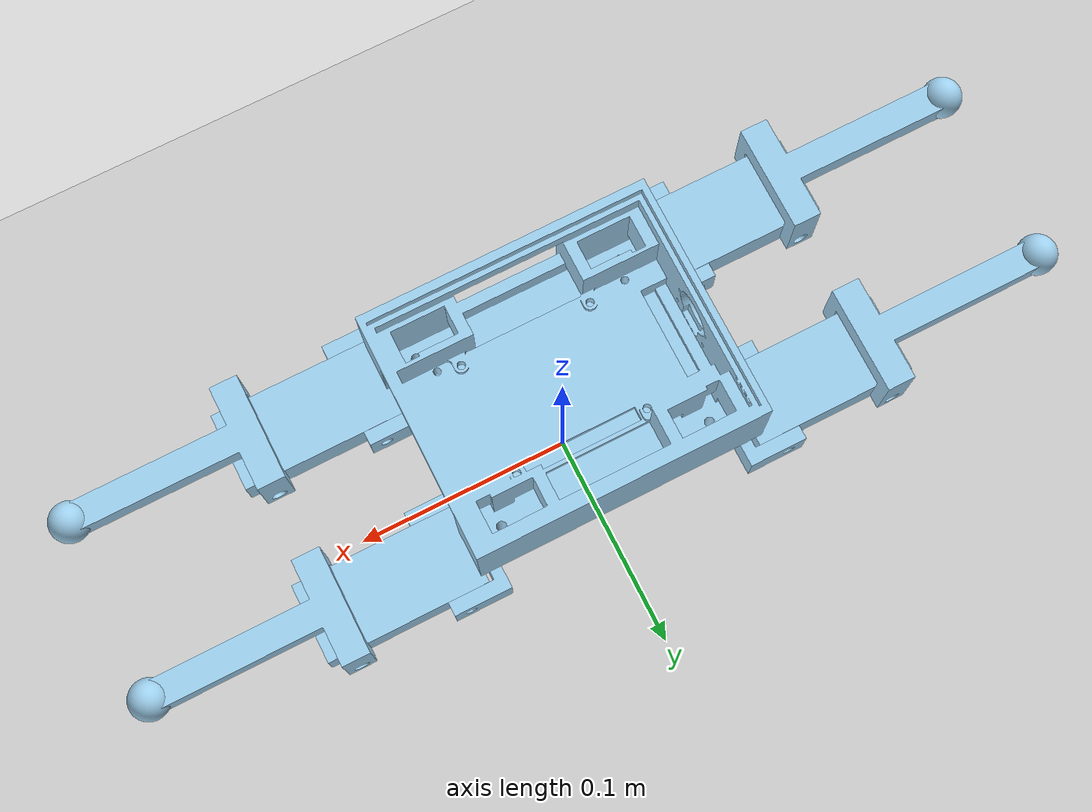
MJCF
<mujoco model="cubebot_scene">

    <include file="cubebot/urdf/cubebot_mesh_collision.xml"/>

    <visual>
        <headlight/>
    </visual>

    <worldbody>

        <!-- Ground -->
        <geom
            name="floor"
            type="plane"
            size="5 5 0.1"
            rgba="0.8 0.8 0.8 1"/>

    </worldbody>

</mujoco>

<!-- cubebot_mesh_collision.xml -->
<mujoco model="cubebot">
  <compiler angle="radian"/>

  <!-- DEFAULTS                                                  -->

  <default>

    <!--
      Visual STL geometry.
      Does NOT participate in collisions.
      group=2 allows visual geometry to be hidden separately.
    -->
    <default class="visual">
      <geom
        contype="0"
        conaffinity="0"
        group="2"/>
    </default>

    <default class="collision">
      <geom
        contype="1"
        conaffinity="1"
        group="3"
        rgba="1 0 0 0.30"/>
    </default>

  </default>

  <!-- ASSETS                                                    -->

  <asset>

    <mesh
      name="Bottom_case"
      content_type="model/stl"
      file="meshes/Bottom_case.stl"/>

    <mesh
      name="Foot"
      content_type="model/stl"
      file="meshes/Foot.stl"/>

    <mesh
      name="Leg_middle_part"
      content_type="model/stl"
      file="meshes/Leg_middle_part.stl"/>

    <mesh
      name="Part_1"
      content_type="model/stl"
      file="meshes/Part_1.stl"/>

    <mesh
      name="Part_1_1"
      content_type="model/stl"
      file="meshes/Part_1_1.stl"/>

    <mesh
      name="Top_case"
      content_type="model/stl"
      file="meshes/Top_case_HD.stl"
      scale="0.001 0.001 0.001"/>

  </asset>

  <!-- WORLD                                                     -->

  <worldbody>

    <body
      name="cubebot"
      pos="0 0 0.1"
      euler="0 0 0">

      <freejoint name="root_freejoint"/>

      <!-- MAIN BODY                                             -->

      <!-- Top case visual -->

      <geom
        class="visual"
        type="mesh"
        mesh="Top_case"
        pos="0 0 0"
        euler="1.57 0 0"
        rgba="0.615686 0.811765 0.929412 1"/>

      <!-- Top case collision -->

      <geom
        class="collision"
        name="top_case_collision"
        type="box"
        pos="0 0 0.015"
        size="0.0625 0.0525 0.0212"/>

      <!-- Bottom case visual -->

      <geom
        class="visual"
        pos="0 0 -0.0232"
        quat="1 0 0 0"
        type="mesh"
        rgba="0.615686 0.811765 0.929412 1"
        mesh="Bottom_case"/>

      <geom
        class="collision"
        name="bottom_case_collision"
        type="box"
        pos="0 0 -0.0112"
        size="0.0425 0.0425 0.0112"/>
      <!-- LEFT BACK LEG                                         -->

      <body
        name="left_back_leg"
        pos="0.0465 -0.0385 -0.0232"
        quat="0.707105 0.707108 0 0">

        <inertial
          pos="0.0105506 0.0075 0"
          quat="0.707107 0 0 0.707107"
          mass="0.03"
          diaginertia="9.164e-06 6.718e-06 3.593e-06"/>

        <joint
          name="revolute_10"
          pos="0 0 0"
          axis="0 -1 0"/>

        <!-- Hip visual -->

        <geom
          class="visual"
          pos="0.012 0.015 0"
          quat="0.707105 0 -0.707108 0"
          type="mesh"
          rgba="0.615686 0.811765 0.929412 1"
          mesh="Part_1"/>

        <!-- Hip collision -->

        <!-- Middle part -->

        <body
          name="leg_middle_part_1"
          pos="0.025 0.0075 0.017"
          quat="0.707105 -0.707108 0 0">

          <inertial
            pos="0.024 0.017 0"
            quat="0 0.707107 0 0.707107"
            mass="0.03"
            diaginertia="1.507e-05 1.279e-05 3.498e-06"/>

          <joint
            name="revolute_12"
            pos="0 0 0"
            axis="0 -1 0"/>

          <!-- Middle visual -->

          <geom
            class="visual"
            pos="0.024 0.017 -0.00775"
            quat="1 0 0 0"
            type="mesh"
            rgba="0.615686 0.811765 0.929412 1"
            mesh="Leg_middle_part"/>

          <!-- Middle collision -->

          <geom
            class="collision"
            name="left_back_middle_collision"
            type="box"
            pos="0.024 0.017 0"
            size="0.024 0.017 0.00775"/>

          <!-- Lower part -->

          <body
            name="part_1_4"
            pos="0.048 0 0"
            quat="0.707105 0 0 0.707108">

            <inertial
              pos="0.017 -0.0291323 0.0162249"
              quat="0.513092 0.486555 -0.486555 0.513092"
              mass="0.03"
              diaginertia="3.099e-05 2.863e-05 4.085e-06"/>

            <joint
              name="revolute_3"
              pos="0 0 0"
              axis="1 0 0"
              limited="true"
              range="0 3.14"/>

            <!-- Lower visual -->

            <geom
              class="visual"
              pos="0.017 -0.076775 0.017856"
              quat="0.707105 -0.707108 0 0"
              type="mesh"
              rgba="0.615686 0.811765 0.929412 1"
              mesh="Part_1_1"/>

            <!-- Lower collision -->

            <geom
              class="collision"
              name="left_back_lower_collision"
              type="box"
              pos="0.017 -0.038 0.017856"
              size="0.005 0.038 0.005"/>

            <!-- Foot visual -->

            <geom
              class="visual"
              pos="0.017 -0.076775 0.017856"
              quat="0.499998 -0.500002 -0.5 -0.5"
              type="mesh"
              rgba="0.615686 0.811765 0.929412 1"
              mesh="Foot"/>

            <!-- Foot collision -->

            <geom
              class="collision"
              name="left_back_foot_collision"
              type="sphere"
              size="0.008"
              pos="0.017 -0.076775 0.017856"/>

          </body>
        </body>
      </body>

      <!-- RIGHT BACK LEG                                        -->

      <body
        name="right_back_leg"
        pos="0.0465 0.0385 -0.0232"
        quat="0.707105 0.707108 0 0">

        <inertial
          pos="0.0105506 0.0075 0"
          quat="0.707107 0 0 0.707107"
          mass="0.03"
          diaginertia="9.164e-06 6.718e-06 3.593e-06"/>

        <joint
          name="revolute_5"
          pos="0 0 0"
          axis="0 -1 0"/>

        <!-- Hip visual -->

        <geom
          class="visual"
          pos="0.012 0.015 0"
          quat="0.707105 0 -0.707108 0"
          type="mesh"
          rgba="0.615686 0.811765 0.929412 1"
          mesh="Part_1"/>

        <!-- Hip collision -->

        <body
          name="leg_middle_part_2"
          pos="0.025 0.0075 0.017"
          quat="0.707105 -0.707108 0 0">

          <inertial
            pos="0.024 0.017 0"
            quat="0 0.707107 0 0.707107"
            mass="0.03"
            diaginertia="1.507e-05 1.279e-05 3.498e-06"/>

          <joint
            name="revolute_6"
            pos="0 0 0"
            axis="0 -1 0"/>

          <!-- Middle visual -->

          <geom
            class="visual"
            pos="0.024 0.017 -0.00775"
            quat="1 0 0 0"
            type="mesh"
            rgba="0.615686 0.811765 0.929412 1"
            mesh="Leg_middle_part"/>

          <!-- Middle collision -->

          <geom
            class="collision"
            name="right_back_middle_collision"
            type="box"
            pos="0.024 0.017 0"
            size="0.024 0.017 0.00775"/>

          <body
            name="part_1_5"
            pos="0.048 0 0"
            quat="0.707105 0 0 0.707108">

            <inertial
              pos="0.017 -0.0291323 0.0162249"
              quat="0.513092 0.486555 -0.486555 0.513092"
              mass="0.03"
              diaginertia="3.099e-05 2.863e-05 4.085e-06"/>

            <joint
              name="revolute_4"
              pos="0 0 0"
              axis="1 0 0"
              limited="true"
              range="0 3.14"/>

            <!-- Lower visual -->

            <geom
              class="visual"
              pos="0.017 -0.076775 0.017856"
              quat="0.707105 -0.707108 0 0"
              type="mesh"
              rgba="0.615686 0.811765 0.929412 1"
              mesh="Part_1_1"/>

            <!-- Lower collision -->

            <geom
              class="collision"
              name="right_back_lower_collision"
              type="box"
              pos="0.017 -0.038 0.017856"
              size="0.005 0.038 0.005"/>

            <!-- Foot visual -->

            <geom
              class="visual"
              pos="0.017 -0.076775 0.017856"
              quat="9.38184e-07 9.38187e-07 0.707108 0.707105"
              type="mesh"
              rgba="0.615686 0.811765 0.929412 1"
              mesh="Foot"/>

            <!-- Foot collision -->

            <geom
              class="collision"
              name="right_back_foot_collision"
              type="sphere"
              size="0.008"
              pos="0.017 -0.076775 0.017856"/>

          </body>
        </body>
      </body>

      <!-- RIGHT FRONT LEG                                       -->

      <body
        name="right_front_leg"
        pos="-0.0465 0.0385 -0.0232"
        quat="0.707105 0.707108 0 0">

        <inertial
          pos="-0.0105506 0.0075 0"
          quat="0.707107 0 0 0.707107"
          mass="0.03"
          diaginertia="9.164e-06 6.718e-06 3.593e-06"/>

        <joint
          name="revolute_7"
          pos="0 0 0"
          axis="0 -1 0"
          range="0 1.57"
              limited="true"/>

        <!-- Hip visual -->

        <geom
          class="visual"
          pos="-0.012 0.015 0"
          quat="0.707105 0 0.707108 0"
          type="mesh"
          rgba="0.615686 0.811765 0.929412 1"
          mesh="Part_1"/>

        <!-- Hip collision -->

        <body
          name="leg_middle_part_3"
          pos="-0.025 0.0075 -0.017"
          quat="0.707105 -0.707108 0 0">

          <inertial
            pos="-0.024 -0.017 0"
            quat="0 0.707107 0 0.707107"
            mass="0.03"
            diaginertia="1.507e-05 1.279e-05 3.498e-06"/>

          <joint
            name="revolute_8"
            pos="0 0 0"
            axis="0 1 0"
            range="0 1.2"
              limited="true"/>

          <!-- Middle visual -->

          <geom
            class="visual"
            pos="-0.024 -0.017 -0.00775"
            quat="1 0 0 0"
            type="mesh"
            rgba="0.615686 0.811765 0.929412 1"
            mesh="Leg_middle_part"/>

          <!-- Middle collision -->

          <geom
            class="collision"
            name="right_front_middle_collision"
            type="box"
            pos="-0.024 -0.017 0"
            size="0.024 0.017 0.00775"/>

          <body
            name="part_1_3"
            pos="-0.048 -0.034 0"
            quat="0.707105 0 0 -0.707108">

            <inertial
              pos="-0.017 -0.0291323 0.0162249"
              quat="0.513092 0.486555 -0.486555 0.513092"
              mass="0.03"
              diaginertia="3.099e-05 2.863e-05 4.085e-06"/>

            <joint
              name="revolute_1"
              pos="0 0 0"
              axis="-1 0 0"
              limited="true"
              range="-3.14 0"/>

            <!-- Lower visual -->

            <geom
              class="visual"
              pos="-0.017 -0.076775 0.017856"
              quat="0.707105 -0.707108 0 0"
              type="mesh"
              rgba="0.615686 0.811765 0.929412 1"
              mesh="Part_1_1"/>

            <!-- Lower collision -->

            <geom
              class="collision"
              name="right_front_lower_collision"
              type="box"
              pos="-0.017 -0.038 0.017856"
              size="0.005 0.038 0.005"/>

            <!-- Foot visual -->

            <geom
              class="visual"
              pos="-0.017 -0.076775 0.017856"
              quat="0.499998 -0.500002 0.5 0.5"
              type="mesh"
              rgba="0.615686 0.811765 0.929412 1"
              mesh="Foot"/>

            <!-- Foot collision -->

            <geom
              class="collision"
              name="right_front_foot_collision"
              type="sphere"
              size="0.008"
              pos="-0.017 -0.076775 0.017856"/>

          </body>
        </body>
      </body>

      <!-- LEFT FRONT LEG                                        -->

      <body
        name="left_front_leg"
        pos="-0.0465 -0.0385 -0.0232"
        quat="0.707105 0.707108 0 0">

        <inertial
          pos="-0.0105506 0.0075 0"
          quat="0.707107 0 0 0.707107"
          mass="0.03"
          diaginertia="9.164e-06 6.718e-06 3.593e-06"/>

        <joint
          name="revolute_9"
          pos="0 0 0"
          axis="0 -1 0"
          range="-1.57 0"
              limited="true"/>

        <!-- Hip visual -->

        <geom
          class="visual"
          pos="-0.012 0.015 0"
          quat="0.707105 0 0.707108 0"
          type="mesh"
          rgba="0.615686 0.811765 0.929412 1"
          mesh="Part_1"/>

        <!-- Hip collision -->

        <body
          name="leg_middle_part"
          pos="-0.025 0.0075 0.017"
          quat="0.707105 -0.707108 0 0">

          <inertial
            pos="-0.024 0.017 0"
            quat="0 0.707107 0 0.707107"
            mass="0.03"
            diaginertia="1.507e-05 1.279e-05 3.498e-06"/>

          <joint
            name="revolute_11"
            pos="0 0 0"
            axis="0 -1 0"
            range="-3.14 0"
              limited="true"/>

          <!-- Middle visual -->

          <geom
            class="visual"
            pos="-0.024 0.017 -0.00775"
            quat="1 0 0 0"
            type="mesh"
            rgba="0.615686 0.811765 0.929412 1"
            mesh="Leg_middle_part"/>

          <!-- Middle collision -->

          <geom
            class="collision"
            name="left_front_middle_collision"
            type="box"
            pos="-0.024 0.017 0"
            size="0.024 0.017 0.00775"/>

          <body
            name="part_1_1"
            pos="-0.048 0 0"
            quat="9.38184e-07 0.707105 -0.707108 -9.38187e-07">

            <inertial
              pos="-0.017 0.0291323 -0.0162249"
              quat="0.513092 0.486555 -0.486555 0.513092"
              mass="0.03"
              diaginertia="3.099e-05 2.863e-05 4.085e-06"/>

            <joint
              name="revolute_2"
              pos="0 0 0"
              axis="-1 0 0"
              limited="true"
              range="-3.14 0"/>

            <!-- Lower visual -->

            <geom
              class="visual"
              pos="-0.017 0.076775 -0.017856"
              quat="0.707105 0.707108 0 0"
              type="mesh"
              rgba="0.615686 0.811765 0.929412 1"
              mesh="Part_1_1"/>

            <!-- Lower collision -->

            <geom
              class="collision"
              name="left_front_lower_collision"
              type="box"
              pos="-0.017 0.038 -0.017856"
              size="0.005 0.038 0.005"/>

            <!-- Foot visual -->

            <geom
              class="visual"
              pos="-0.017 0.076775 -0.017856"
              quat="0.499998 0.500002 -0.5 0.5"
              type="mesh"
              rgba="0.615686 0.811765 0.929412 1"
              mesh="Foot"/>

            <!-- Foot collision -->

            <geom
              class="collision"
              name="left_front_foot_collision"
              type="sphere"
              size="0.008"
              pos="-0.017 0.076775 -0.017856"/>

          </body>
        </body>
      </body>

    </body>
  </worldbody>

<actuator>

  <!-- LEFT BACK -->
  <position
    name="servo_revolute_10"
    joint="revolute_10"
    kp="15"
    dampratio="1"
    forcelimited="true"
    forcerange="-0.34 0.34"/>

  <position
    name="servo_revolute_12"
    joint="revolute_12"
    kp="15"
    dampratio="1"
    forcelimited="true"
    forcerange="-0.34 0.34"/>

  <position
    name="servo_revolute_3"
    joint="revolute_3"
    kp="15"
    dampratio="1"
    forcelimited="true"
    forcerange="-0.34 0.34"/>

  <!-- RIGHT BACK -->
  <position
    name="servo_revolute_5"
    joint="revolute_5"
    kp="15"
    dampratio="1"
    forcelimited="true"
    forcerange="-0.34 0.34"/>

  <position
    name="servo_revolute_6"
    joint="revolute_6"
    kp="15"
    dampratio="1"
    forcelimited="true"
    forcerange="-0.34 0.34"/>

  <position
    name="servo_revolute_4"
    joint="revolute_4"
    kp="15"
    dampratio="1"
    forcelimited="true"
    forcerange="-0.34 0.34"/>

  <!-- RIGHT FRONT -->
  <position
    name="servo_revolute_7"
    joint="revolute_7"
    kp="15"
    dampratio="1"
    forcelimited="true"
    forcerange="-0.34 0.34"/>

  <position
    name="servo_revolute_8"
    joint="revolute_8"
    kp="15"
    dampratio="1"
    forcelimited="true"
    forcerange="-0.34 0.34"/>

  <position
    name="servo_revolute_1"
    joint="revolute_1"
    kp="15"
    dampratio="1"
    forcelimited="true"
    forcerange="-0.34 0.34"/>

  <!-- LEFT FRONT -->
  <position
    name="servo_revolute_9"
    joint="revolute_9"
    kp="15"
    dampratio="1"
    forcelimited="true"
    forcerange="-0.34 0.34"/>

  <position
    name="servo_revolute_11"
    joint="revolute_11"
    kp="15"
    dampratio="1"
    forcelimited="true"
    forcerange="-0.34 0.34"/>

  <position
    name="servo_revolute_2"
    joint="revolute_2"
    kp="15"
    dampratio="1"
    forcelimited="true"
    forcerange="-0.34 0.34"/>

</actuator>

</mujoco>
